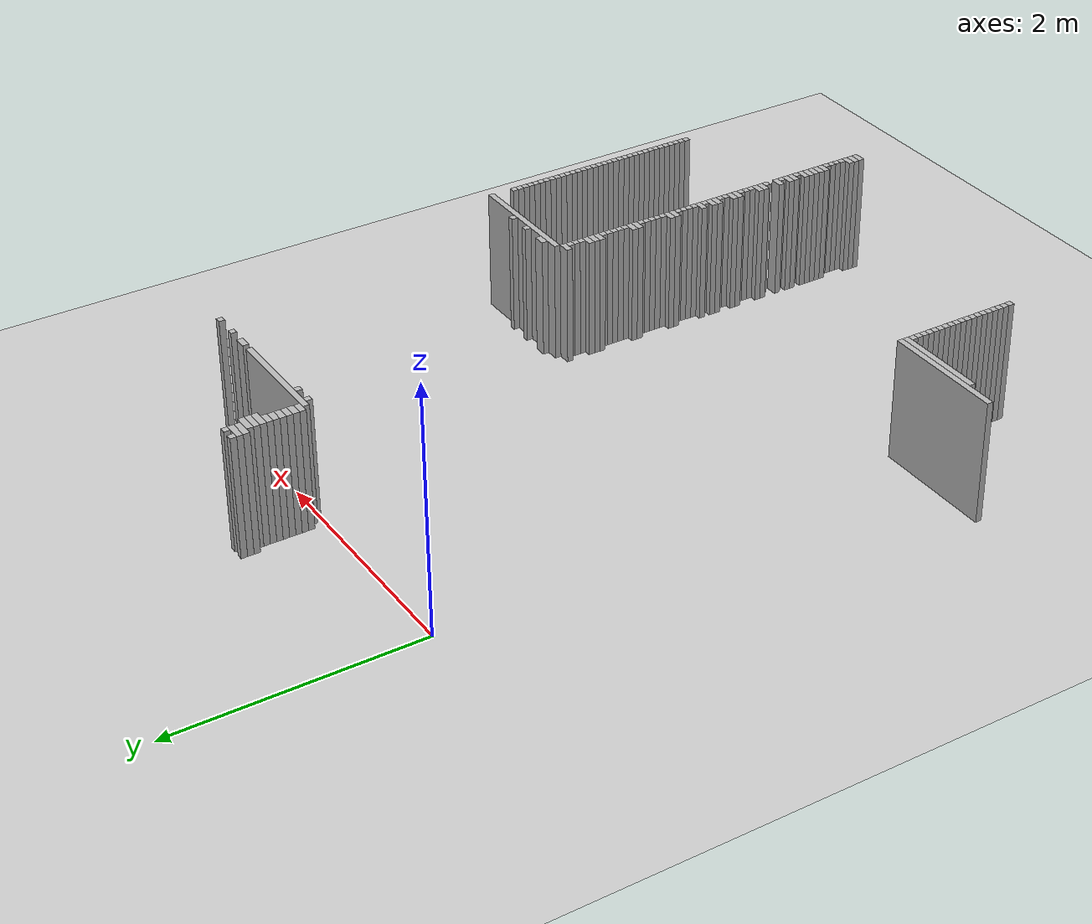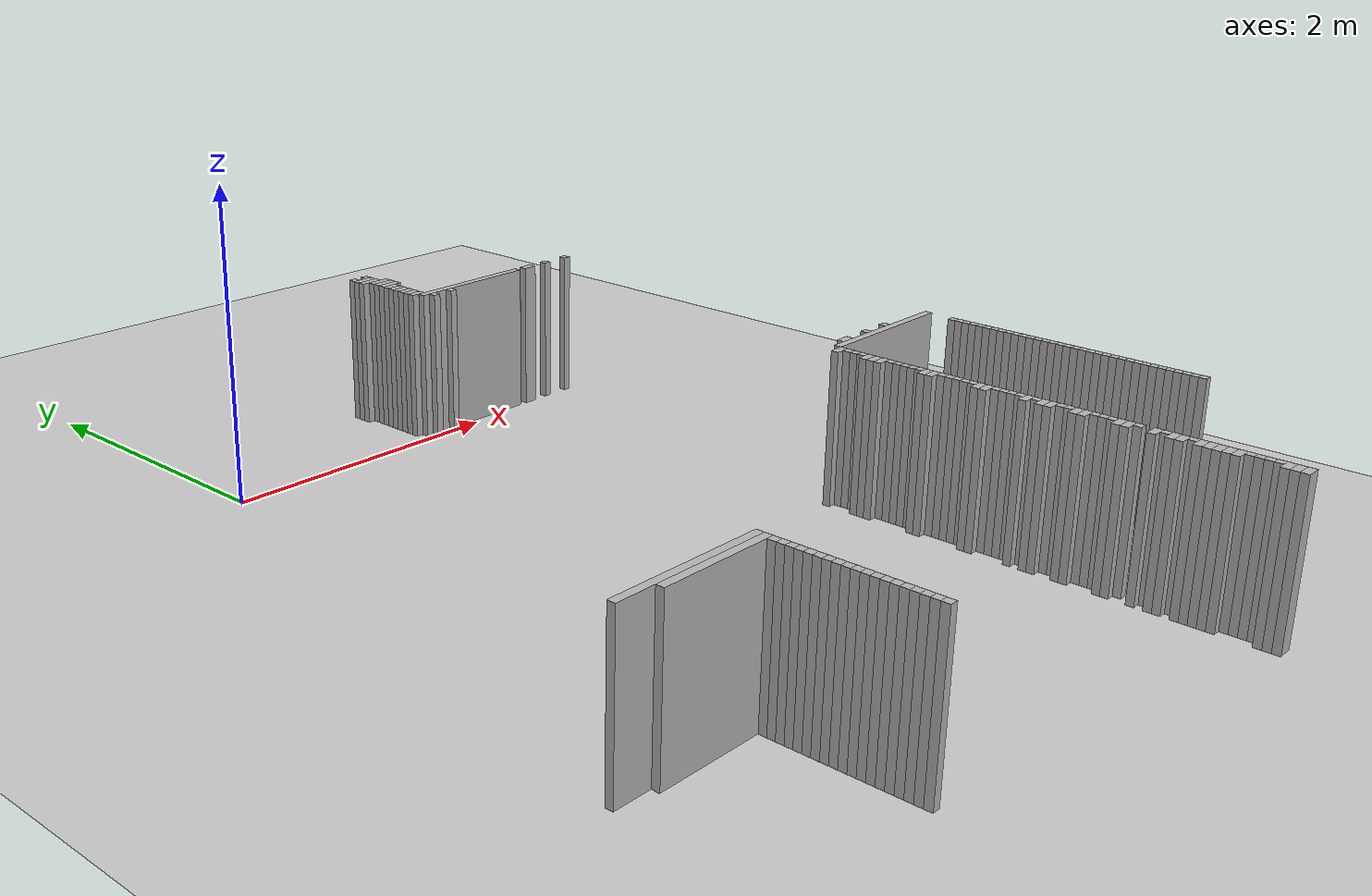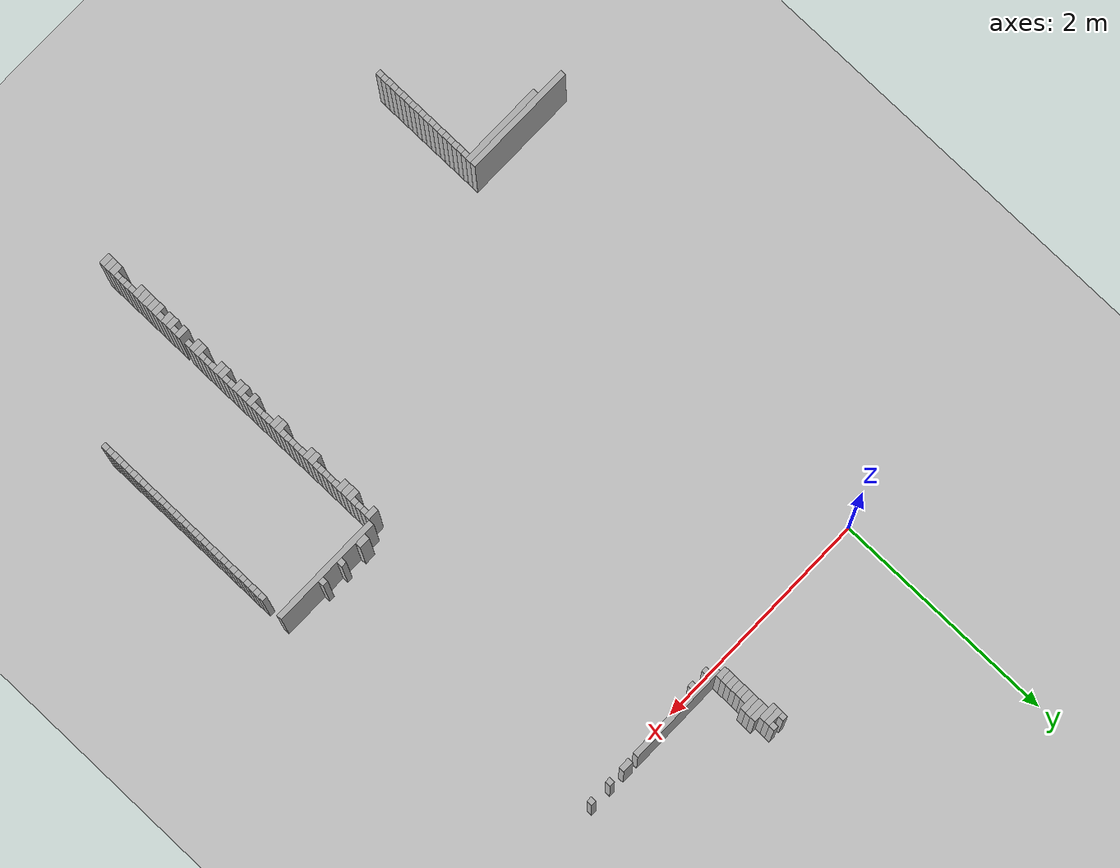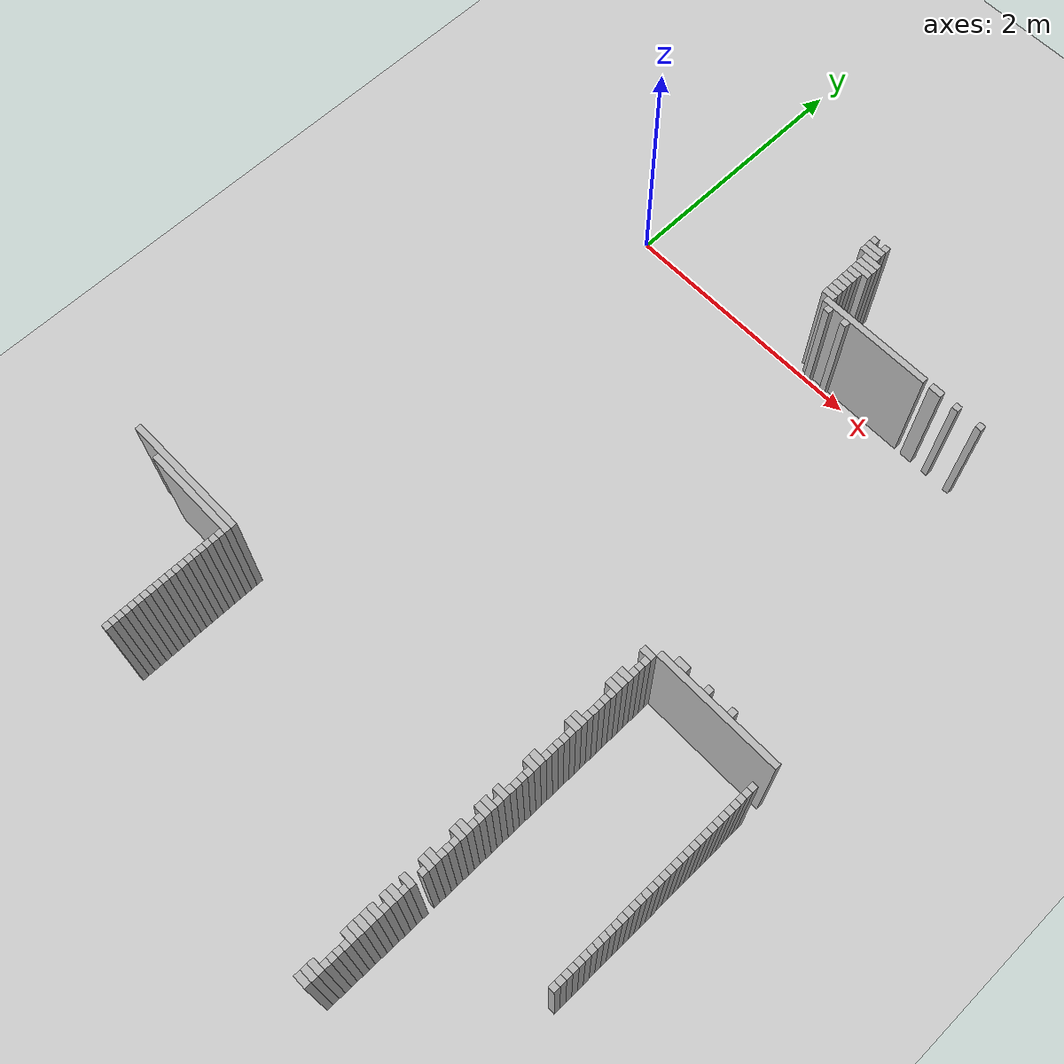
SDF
<sdf version="1.6">
 <world name="udh1_world">
  <include><uri>model://ground_plane</uri></include>
  <include><uri>model://sun</uri></include>
  <model name="wall_1366">
   <static>true</static>
   <pose>1.5050000000000008 0.6699999999999999 0.5 0 0 0</pose>
   <link name="link">
    <collision name="col"><geometry><box><size>0.05 0.05 1</size></box></geometry></collision>
    <visual name="vis"><geometry><box><size>0.05 0.05 1</size></box></geometry></visual>
   </link>
  </model>
  <model name="wall_1367">
   <static>true</static>
   <pose>1.6050000000000004 0.6699999999999999 0.5 0 0 0</pose>
   <link name="link">
    <collision name="col"><geometry><box><size>0.05 0.05 1</size></box></geometry></collision>
    <visual name="vis"><geometry><box><size>0.05 0.05 1</size></box></geometry></visual>
   </link>
  </model>
  <model name="wall_1374">
   <static>true</static>
   <pose>1.5550000000000015 0.6199999999999992 0.5 0 0 0</pose>
   <link name="link">
    <collision name="col"><geometry><box><size>0.15000000000000002 0.05 1</size></box></geometry></collision>
    <visual name="vis"><geometry><box><size>0.15000000000000002 0.05 1</size></box></geometry></visual>
   </link>
  </model>
  <model name="wall_1381">
   <static>true</static>
   <pose>1.5550000000000015 0.5700000000000003 0.5 0 0 0</pose>
   <link name="link">
    <collision name="col"><geometry><box><size>0.15000000000000002 0.05 1</size></box></geometry></collision>
    <visual name="vis"><geometry><box><size>0.15000000000000002 0.05 1</size></box></geometry></visual>
   </link>
  </model>
  <model name="wall_1387">
   <static>true</static>
   <pose>1.6050000000000004 0.5199999999999996 0.5 0 0 0</pose>
   <link name="link">
    <collision name="col"><geometry><box><size>0.15000000000000002 0.05 1</size></box></geometry></collision>
    <visual name="vis"><geometry><box><size>0.15000000000000002 0.05 1</size></box></geometry></visual>
   </link>
  </model>
  <model name="wall_1394">
   <static>true</static>
   <pose>1.6050000000000004 0.47000000000000064 0.5 0 0 0</pose>
   <link name="link">
    <collision name="col"><geometry><box><size>0.15000000000000002 0.05 1</size></box></geometry></collision>
    <visual name="vis"><geometry><box><size>0.15000000000000002 0.05 1</size></box></geometry></visual>
   </link>
  </model>
  <model name="wall_1401">
   <static>true</static>
   <pose>1.6050000000000004 0.41999999999999993 0.5 0 0 0</pose>
   <link name="link">
    <collision name="col"><geometry><box><size>0.15000000000000002 0.05 1</size></box></geometry></collision>
    <visual name="vis"><geometry><box><size>0.15000000000000002 0.05 1</size></box></geometry></visual>
   </link>
  </model>
  <model name="wall_1408">
   <static>true</static>
   <pose>1.5800000000000018 0.3699999999999992 0.5 0 0 0</pose>
   <link name="link">
    <collision name="col"><geometry><box><size>0.1 0.05 1</size></box></geometry></collision>
    <visual name="vis"><geometry><box><size>0.1 0.05 1</size></box></geometry></visual>
   </link>
  </model>
  <model name="wall_1415">
   <static>true</static>
   <pose>1.5800000000000018 0.3200000000000003 0.5 0 0 0</pose>
   <link name="link">
    <collision name="col"><geometry><box><size>0.1 0.05 1</size></box></geometry></collision>
    <visual name="vis"><geometry><box><size>0.1 0.05 1</size></box></geometry></visual>
   </link>
  </model>
  <model name="wall_1422">
   <static>true</static>
   <pose>1.5800000000000018 0.2699999999999996 0.5 0 0 0</pose>
   <link name="link">
    <collision name="col"><geometry><box><size>0.1 0.05 1</size></box></geometry></collision>
    <visual name="vis"><geometry><box><size>0.1 0.05 1</size></box></geometry></visual>
   </link>
  </model>
  <model name="wall_1429">
   <static>true</static>
   <pose>1.5800000000000018 0.21999999999999886 0.5 0 0 0</pose>
   <link name="link">
    <collision name="col"><geometry><box><size>0.1 0.05 1</size></box></geometry></collision>
    <visual name="vis"><geometry><box><size>0.1 0.05 1</size></box></geometry></visual>
   </link>
  </model>
  <model name="wall_1436">
   <static>true</static>
   <pose>1.5800000000000018 0.16999999999999993 0.5 0 0 0</pose>
   <link name="link">
    <collision name="col"><geometry><box><size>0.1 0.05 1</size></box></geometry></collision>
    <visual name="vis"><geometry><box><size>0.1 0.05 1</size></box></geometry></visual>
   </link>
  </model>
  <model name="wall_1443">
   <static>true</static>
   <pose>1.5800000000000018 0.11999999999999922 0.5 0 0 0</pose>
   <link name="link">
    <collision name="col"><geometry><box><size>0.1 0.05 1</size></box></geometry></collision>
    <visual name="vis"><geometry><box><size>0.1 0.05 1</size></box></geometry></visual>
   </link>
  </model>
  <model name="wall_1449">
   <static>true</static>
   <pose>2.030000000000001 0.07000000000000028 0.5 0 0 0</pose>
   <link name="link">
    <collision name="col"><geometry><box><size>0.9 0.05 1</size></box></geometry></collision>
    <visual name="vis"><geometry><box><size>0.9 0.05 1</size></box></geometry></visual>
   </link>
  </model>
  <model name="wall_1450">
   <static>true</static>
   <pose>2.580000000000002 0.07000000000000028 0.5 0 0 0</pose>
   <link name="link">
    <collision name="col"><geometry><box><size>0.1 0.05 1</size></box></geometry></collision>
    <visual name="vis"><geometry><box><size>0.1 0.05 1</size></box></geometry></visual>
   </link>
  </model>
  <model name="wall_1451">
   <static>true</static>
   <pose>2.755000000000001 0.07000000000000028 0.5 0 0 0</pose>
   <link name="link">
    <collision name="col"><geometry><box><size>0.05 0.05 1</size></box></geometry></collision>
    <visual name="vis"><geometry><box><size>0.05 0.05 1</size></box></geometry></visual>
   </link>
  </model>
  <model name="wall_1452">
   <static>true</static>
   <pose>2.955000000000002 0.07000000000000028 0.5 0 0 0</pose>
   <link name="link">
    <collision name="col"><geometry><box><size>0.05 0.05 1</size></box></geometry></collision>
    <visual name="vis"><geometry><box><size>0.05 0.05 1</size></box></geometry></visual>
   </link>
  </model>
  <model name="wall_1459">
   <static>true</static>
   <pose>1.6550000000000011 0.019999999999999574 0.5 0 0 0</pose>
   <link name="link">
    <collision name="col"><geometry><box><size>0.05 0.05 1</size></box></geometry></collision>
    <visual name="vis"><geometry><box><size>0.05 0.05 1</size></box></geometry></visual>
   </link>
  </model>
  <model name="wall_1460">
   <static>true</static>
   <pose>1.8050000000000015 0.019999999999999574 0.5 0 0 0</pose>
   <link name="link">
    <collision name="col"><geometry><box><size>0.05 0.05 1</size></box></geometry></collision>
    <visual name="vis"><geometry><box><size>0.05 0.05 1</size></box></geometry></visual>
   </link>
  </model>
  <model name="wall_1717">
   <static>true</static>
   <pose>2.7300000000000004 -2.5300000000000002 0.5 0 0 0</pose>
   <link name="link">
    <collision name="col"><geometry><box><size>0.1 0.05 1</size></box></geometry></collision>
    <visual name="vis"><geometry><box><size>0.1 0.05 1</size></box></geometry></visual>
   </link>
  </model>
  <model name="wall_1718">
   <static>true</static>
   <pose>2.955000000000002 -2.5300000000000002 0.5 0 0 0</pose>
   <link name="link">
    <collision name="col"><geometry><box><size>0.05 0.05 1</size></box></geometry></collision>
    <visual name="vis"><geometry><box><size>0.05 0.05 1</size></box></geometry></visual>
   </link>
  </model>
  <model name="wall_1719">
   <static>true</static>
   <pose>3.155000000000001 -2.5300000000000002 0.5 0 0 0</pose>
   <link name="link">
    <collision name="col"><geometry><box><size>0.05 0.05 1</size></box></geometry></collision>
    <visual name="vis"><geometry><box><size>0.05 0.05 1</size></box></geometry></visual>
   </link>
  </model>
  <model name="wall_1724">
   <static>true</static>
   <pose>3.080000000000002 -2.58 0.5 0 0 0</pose>
   <link name="link">
    <collision name="col"><geometry><box><size>1.0 0.05 1</size></box></geometry></collision>
    <visual name="vis"><geometry><box><size>1.0 0.05 1</size></box></geometry></visual>
   </link>
  </model>
  <model name="wall_1729">
   <static>true</static>
   <pose>2.530000000000001 -2.630000000000001 0.5 0 0 0</pose>
   <link name="link">
    <collision name="col"><geometry><box><size>0.1 0.05 1</size></box></geometry></collision>
    <visual name="vis"><geometry><box><size>0.1 0.05 1</size></box></geometry></visual>
   </link>
  </model>
  <model name="wall_1735">
   <static>true</static>
   <pose>2.5550000000000015 -2.6800000000000006 0.5 0 0 0</pose>
   <link name="link">
    <collision name="col"><geometry><box><size>0.05 0.05 1</size></box></geometry></collision>
    <visual name="vis"><geometry><box><size>0.05 0.05 1</size></box></geometry></visual>
   </link>
  </model>
  <model name="wall_1741">
   <static>true</static>
   <pose>2.5550000000000015 -2.7300000000000004 0.5 0 0 0</pose>
   <link name="link">
    <collision name="col"><geometry><box><size>0.05 0.05 1</size></box></geometry></collision>
    <visual name="vis"><geometry><box><size>0.05 0.05 1</size></box></geometry></visual>
   </link>
  </model>
  <model name="wall_1747">
   <static>true</static>
   <pose>2.5550000000000015 -2.7800000000000002 0.5 0 0 0</pose>
   <link name="link">
    <collision name="col"><geometry><box><size>0.05 0.05 1</size></box></geometry></collision>
    <visual name="vis"><geometry><box><size>0.05 0.05 1</size></box></geometry></visual>
   </link>
  </model>
  <model name="wall_1748">
   <static>true</static>
   <pose>3.5550000000000015 -2.7800000000000002 0.5 0 0 0</pose>
   <link name="link">
    <collision name="col"><geometry><box><size>0.05 0.05 1</size></box></geometry></collision>
    <visual name="vis"><geometry><box><size>0.05 0.05 1</size></box></geometry></visual>
   </link>
  </model>
  <model name="wall_1753">
   <static>true</static>
   <pose>2.530000000000001 -2.83 0.5 0 0 0</pose>
   <link name="link">
    <collision name="col"><geometry><box><size>0.1 0.05 1</size></box></geometry></collision>
    <visual name="vis"><geometry><box><size>0.1 0.05 1</size></box></geometry></visual>
   </link>
  </model>
  <model name="wall_1754">
   <static>true</static>
   <pose>3.5550000000000015 -2.83 0.5 0 0 0</pose>
   <link name="link">
    <collision name="col"><geometry><box><size>0.05 0.05 1</size></box></geometry></collision>
    <visual name="vis"><geometry><box><size>0.05 0.05 1</size></box></geometry></visual>
   </link>
  </model>
  <model name="wall_1759">
   <static>true</static>
   <pose>2.530000000000001 -2.880000000000001 0.5 0 0 0</pose>
   <link name="link">
    <collision name="col"><geometry><box><size>0.1 0.05 1</size></box></geometry></collision>
    <visual name="vis"><geometry><box><size>0.1 0.05 1</size></box></geometry></visual>
   </link>
  </model>
  <model name="wall_1760">
   <static>true</static>
   <pose>3.5550000000000015 -2.880000000000001 0.5 0 0 0</pose>
   <link name="link">
    <collision name="col"><geometry><box><size>0.05 0.05 1</size></box></geometry></collision>
    <visual name="vis"><geometry><box><size>0.05 0.05 1</size></box></geometry></visual>
   </link>
  </model>
  <model name="wall_1765">
   <static>true</static>
   <pose>2.530000000000001 -2.9300000000000006 0.5 0 0 0</pose>
   <link name="link">
    <collision name="col"><geometry><box><size>0.1 0.05 1</size></box></geometry></collision>
    <visual name="vis"><geometry><box><size>0.1 0.05 1</size></box></geometry></visual>
   </link>
  </model>
  <model name="wall_1766">
   <static>true</static>
   <pose>3.5550000000000015 -2.9300000000000006 0.5 0 0 0</pose>
   <link name="link">
    <collision name="col"><geometry><box><size>0.05 0.05 1</size></box></geometry></collision>
    <visual name="vis"><geometry><box><size>0.05 0.05 1</size></box></geometry></visual>
   </link>
  </model>
  <model name="wall_1771">
   <static>true</static>
   <pose>2.5550000000000015 -2.9800000000000004 0.5 0 0 0</pose>
   <link name="link">
    <collision name="col"><geometry><box><size>0.05 0.05 1</size></box></geometry></collision>
    <visual name="vis"><geometry><box><size>0.05 0.05 1</size></box></geometry></visual>
   </link>
  </model>
  <model name="wall_1772">
   <static>true</static>
   <pose>3.5550000000000015 -2.9800000000000004 0.5 0 0 0</pose>
   <link name="link">
    <collision name="col"><geometry><box><size>0.05 0.05 1</size></box></geometry></collision>
    <visual name="vis"><geometry><box><size>0.05 0.05 1</size></box></geometry></visual>
   </link>
  </model>
  <model name="wall_1777">
   <static>true</static>
   <pose>2.5550000000000015 -3.0300000000000002 0.5 0 0 0</pose>
   <link name="link">
    <collision name="col"><geometry><box><size>0.05 0.05 1</size></box></geometry></collision>
    <visual name="vis"><geometry><box><size>0.05 0.05 1</size></box></geometry></visual>
   </link>
  </model>
  <model name="wall_1778">
   <static>true</static>
   <pose>3.5550000000000015 -3.0300000000000002 0.5 0 0 0</pose>
   <link name="link">
    <collision name="col"><geometry><box><size>0.05 0.05 1</size></box></geometry></collision>
    <visual name="vis"><geometry><box><size>0.05 0.05 1</size></box></geometry></visual>
   </link>
  </model>
  <model name="wall_1783">
   <static>true</static>
   <pose>2.5550000000000015 -3.08 0.5 0 0 0</pose>
   <link name="link">
    <collision name="col"><geometry><box><size>0.05 0.05 1</size></box></geometry></collision>
    <visual name="vis"><geometry><box><size>0.05 0.05 1</size></box></geometry></visual>
   </link>
  </model>
  <model name="wall_1784">
   <static>true</static>
   <pose>3.5550000000000015 -3.08 0.5 0 0 0</pose>
   <link name="link">
    <collision name="col"><geometry><box><size>0.05 0.05 1</size></box></geometry></collision>
    <visual name="vis"><geometry><box><size>0.05 0.05 1</size></box></geometry></visual>
   </link>
  </model>
  <model name="wall_1789">
   <static>true</static>
   <pose>2.5550000000000015 -3.130000000000001 0.5 0 0 0</pose>
   <link name="link">
    <collision name="col"><geometry><box><size>0.05 0.05 1</size></box></geometry></collision>
    <visual name="vis"><geometry><box><size>0.05 0.05 1</size></box></geometry></visual>
   </link>
  </model>
  <model name="wall_1790">
   <static>true</static>
   <pose>3.5550000000000015 -3.130000000000001 0.5 0 0 0</pose>
   <link name="link">
    <collision name="col"><geometry><box><size>0.05 0.05 1</size></box></geometry></collision>
    <visual name="vis"><geometry><box><size>0.05 0.05 1</size></box></geometry></visual>
   </link>
  </model>
  <model name="wall_1795">
   <static>true</static>
   <pose>2.5550000000000015 -3.1800000000000006 0.5 0 0 0</pose>
   <link name="link">
    <collision name="col"><geometry><box><size>0.05 0.05 1</size></box></geometry></collision>
    <visual name="vis"><geometry><box><size>0.05 0.05 1</size></box></geometry></visual>
   </link>
  </model>
  <model name="wall_1796">
   <static>true</static>
   <pose>3.5550000000000015 -3.1800000000000006 0.5 0 0 0</pose>
   <link name="link">
    <collision name="col"><geometry><box><size>0.05 0.05 1</size></box></geometry></collision>
    <visual name="vis"><geometry><box><size>0.05 0.05 1</size></box></geometry></visual>
   </link>
  </model>
  <model name="wall_1801">
   <static>true</static>
   <pose>2.530000000000001 -3.2300000000000004 0.5 0 0 0</pose>
   <link name="link">
    <collision name="col"><geometry><box><size>0.1 0.05 1</size></box></geometry></collision>
    <visual name="vis"><geometry><box><size>0.1 0.05 1</size></box></geometry></visual>
   </link>
  </model>
  <model name="wall_1802">
   <static>true</static>
   <pose>3.5550000000000015 -3.2300000000000004 0.5 0 0 0</pose>
   <link name="link">
    <collision name="col"><geometry><box><size>0.05 0.05 1</size></box></geometry></collision>
    <visual name="vis"><geometry><box><size>0.05 0.05 1</size></box></geometry></visual>
   </link>
  </model>
  <model name="wall_1807">
   <static>true</static>
   <pose>2.530000000000001 -3.2800000000000002 0.5 0 0 0</pose>
   <link name="link">
    <collision name="col"><geometry><box><size>0.1 0.05 1</size></box></geometry></collision>
    <visual name="vis"><geometry><box><size>0.1 0.05 1</size></box></geometry></visual>
   </link>
  </model>
  <model name="wall_1808">
   <static>true</static>
   <pose>3.5550000000000015 -3.2800000000000002 0.5 0 0 0</pose>
   <link name="link">
    <collision name="col"><geometry><box><size>0.05 0.05 1</size></box></geometry></collision>
    <visual name="vis"><geometry><box><size>0.05 0.05 1</size></box></geometry></visual>
   </link>
  </model>
  <model name="wall_1813">
   <static>true</static>
   <pose>2.5550000000000015 -3.33 0.5 0 0 0</pose>
   <link name="link">
    <collision name="col"><geometry><box><size>0.05 0.05 1</size></box></geometry></collision>
    <visual name="vis"><geometry><box><size>0.05 0.05 1</size></box></geometry></visual>
   </link>
  </model>
  <model name="wall_1814">
   <static>true</static>
   <pose>3.5550000000000015 -3.33 0.5 0 0 0</pose>
   <link name="link">
    <collision name="col"><geometry><box><size>0.05 0.05 1</size></box></geometry></collision>
    <visual name="vis"><geometry><box><size>0.05 0.05 1</size></box></geometry></visual>
   </link>
  </model>
  <model name="wall_1819">
   <static>true</static>
   <pose>2.5550000000000015 -3.380000000000001 0.5 0 0 0</pose>
   <link name="link">
    <collision name="col"><geometry><box><size>0.05 0.05 1</size></box></geometry></collision>
    <visual name="vis"><geometry><box><size>0.05 0.05 1</size></box></geometry></visual>
   </link>
  </model>
  <model name="wall_1820">
   <static>true</static>
   <pose>3.5550000000000015 -3.380000000000001 0.5 0 0 0</pose>
   <link name="link">
    <collision name="col"><geometry><box><size>0.05 0.05 1</size></box></geometry></collision>
    <visual name="vis"><geometry><box><size>0.05 0.05 1</size></box></geometry></visual>
   </link>
  </model>
  <model name="wall_1825">
   <static>true</static>
   <pose>2.5550000000000015 -3.4300000000000006 0.5 0 0 0</pose>
   <link name="link">
    <collision name="col"><geometry><box><size>0.05 0.05 1</size></box></geometry></collision>
    <visual name="vis"><geometry><box><size>0.05 0.05 1</size></box></geometry></visual>
   </link>
  </model>
  <model name="wall_1826">
   <static>true</static>
   <pose>3.5550000000000015 -3.4300000000000006 0.5 0 0 0</pose>
   <link name="link">
    <collision name="col"><geometry><box><size>0.05 0.05 1</size></box></geometry></collision>
    <visual name="vis"><geometry><box><size>0.05 0.05 1</size></box></geometry></visual>
   </link>
  </model>
  <model name="wall_1839">
   <static>true</static>
   <pose>2.5550000000000015 -3.4800000000000004 0.5 0 0 0</pose>
   <link name="link">
    <collision name="col"><geometry><box><size>0.05 0.05 1</size></box></geometry></collision>
    <visual name="vis"><geometry><box><size>0.05 0.05 1</size></box></geometry></visual>
   </link>
  </model>
  <model name="wall_1840">
   <static>true</static>
   <pose>3.5550000000000015 -3.4800000000000004 0.5 0 0 0</pose>
   <link name="link">
    <collision name="col"><geometry><box><size>0.05 0.05 1</size></box></geometry></collision>
    <visual name="vis"><geometry><box><size>0.05 0.05 1</size></box></geometry></visual>
   </link>
  </model>
  <model name="wall_1845">
   <static>true</static>
   <pose>2.5550000000000015 -3.5300000000000002 0.5 0 0 0</pose>
   <link name="link">
    <collision name="col"><geometry><box><size>0.05 0.05 1</size></box></geometry></collision>
    <visual name="vis"><geometry><box><size>0.05 0.05 1</size></box></geometry></visual>
   </link>
  </model>
  <model name="wall_1846">
   <static>true</static>
   <pose>3.5550000000000015 -3.5300000000000002 0.5 0 0 0</pose>
   <link name="link">
    <collision name="col"><geometry><box><size>0.05 0.05 1</size></box></geometry></collision>
    <visual name="vis"><geometry><box><size>0.05 0.05 1</size></box></geometry></visual>
   </link>
  </model>
  <model name="wall_1851">
   <static>true</static>
   <pose>2.530000000000001 -3.58 0.5 0 0 0</pose>
   <link name="link">
    <collision name="col"><geometry><box><size>0.1 0.05 1</size></box></geometry></collision>
    <visual name="vis"><geometry><box><size>0.1 0.05 1</size></box></geometry></visual>
   </link>
  </model>
  <model name="wall_1852">
   <static>true</static>
   <pose>3.5550000000000015 -3.58 0.5 0 0 0</pose>
   <link name="link">
    <collision name="col"><geometry><box><size>0.05 0.05 1</size></box></geometry></collision>
    <visual name="vis"><geometry><box><size>0.05 0.05 1</size></box></geometry></visual>
   </link>
  </model>
  <model name="wall_1857">
   <static>true</static>
   <pose>2.530000000000001 -3.630000000000001 0.5 0 0 0</pose>
   <link name="link">
    <collision name="col"><geometry><box><size>0.1 0.05 1</size></box></geometry></collision>
    <visual name="vis"><geometry><box><size>0.1 0.05 1</size></box></geometry></visual>
   </link>
  </model>
  <model name="wall_1858">
   <static>true</static>
   <pose>3.5550000000000015 -3.630000000000001 0.5 0 0 0</pose>
   <link name="link">
    <collision name="col"><geometry><box><size>0.05 0.05 1</size></box></geometry></collision>
    <visual name="vis"><geometry><box><size>0.05 0.05 1</size></box></geometry></visual>
   </link>
  </model>
  <model name="wall_1863">
   <static>true</static>
   <pose>2.5550000000000015 -3.6800000000000006 0.5 0 0 0</pose>
   <link name="link">
    <collision name="col"><geometry><box><size>0.05 0.05 1</size></box></geometry></collision>
    <visual name="vis"><geometry><box><size>0.05 0.05 1</size></box></geometry></visual>
   </link>
  </model>
  <model name="wall_1864">
   <static>true</static>
   <pose>3.5550000000000015 -3.6800000000000006 0.5 0 0 0</pose>
   <link name="link">
    <collision name="col"><geometry><box><size>0.05 0.05 1</size></box></geometry></collision>
    <visual name="vis"><geometry><box><size>0.05 0.05 1</size></box></geometry></visual>
   </link>
  </model>
  <model name="wall_1869">
   <static>true</static>
   <pose>2.5550000000000015 -3.7300000000000004 0.5 0 0 0</pose>
   <link name="link">
    <collision name="col"><geometry><box><size>0.05 0.05 1</size></box></geometry></collision>
    <visual name="vis"><geometry><box><size>0.05 0.05 1</size></box></geometry></visual>
   </link>
  </model>
  <model name="wall_1870">
   <static>true</static>
   <pose>3.5550000000000015 -3.7300000000000004 0.5 0 0 0</pose>
   <link name="link">
    <collision name="col"><geometry><box><size>0.05 0.05 1</size></box></geometry></collision>
    <visual name="vis"><geometry><box><size>0.05 0.05 1</size></box></geometry></visual>
   </link>
  </model>
  <model name="wall_1875">
   <static>true</static>
   <pose>2.5550000000000015 -3.7800000000000002 0.5 0 0 0</pose>
   <link name="link">
    <collision name="col"><geometry><box><size>0.05 0.05 1</size></box></geometry></collision>
    <visual name="vis"><geometry><box><size>0.05 0.05 1</size></box></geometry></visual>
   </link>
  </model>
  <model name="wall_1876">
   <static>true</static>
   <pose>3.5550000000000015 -3.7800000000000002 0.5 0 0 0</pose>
   <link name="link">
    <collision name="col"><geometry><box><size>0.05 0.05 1</size></box></geometry></collision>
    <visual name="vis"><geometry><box><size>0.05 0.05 1</size></box></geometry></visual>
   </link>
  </model>
  <model name="wall_1881">
   <static>true</static>
   <pose>2.5550000000000015 -3.83 0.5 0 0 0</pose>
   <link name="link">
    <collision name="col"><geometry><box><size>0.05 0.05 1</size></box></geometry></collision>
    <visual name="vis"><geometry><box><size>0.05 0.05 1</size></box></geometry></visual>
   </link>
  </model>
  <model name="wall_1882">
   <static>true</static>
   <pose>3.5550000000000015 -3.83 0.5 0 0 0</pose>
   <link name="link">
    <collision name="col"><geometry><box><size>0.05 0.05 1</size></box></geometry></collision>
    <visual name="vis"><geometry><box><size>0.05 0.05 1</size></box></geometry></visual>
   </link>
  </model>
  <model name="wall_1887">
   <static>true</static>
   <pose>2.530000000000001 -3.880000000000001 0.5 0 0 0</pose>
   <link name="link">
    <collision name="col"><geometry><box><size>0.1 0.05 1</size></box></geometry></collision>
    <visual name="vis"><geometry><box><size>0.1 0.05 1</size></box></geometry></visual>
   </link>
  </model>
  <model name="wall_1888">
   <static>true</static>
   <pose>3.5550000000000015 -3.880000000000001 0.5 0 0 0</pose>
   <link name="link">
    <collision name="col"><geometry><box><size>0.05 0.05 1</size></box></geometry></collision>
    <visual name="vis"><geometry><box><size>0.05 0.05 1</size></box></geometry></visual>
   </link>
  </model>
  <model name="wall_1893">
   <static>true</static>
   <pose>-0.41999999999999993 -3.9300000000000006 0.5 0 0 0</pose>
   <link name="link">
    <collision name="col"><geometry><box><size>1.0 0.05 1</size></box></geometry></collision>
    <visual name="vis"><geometry><box><size>1.0 0.05 1</size></box></geometry></visual>
   </link>
  </model>
  <model name="wall_1894">
   <static>true</static>
   <pose>2.5550000000000015 -3.9300000000000006 0.5 0 0 0</pose>
   <link name="link">
    <collision name="col"><geometry><box><size>0.05 0.05 1</size></box></geometry></collision>
    <visual name="vis"><geometry><box><size>0.05 0.05 1</size></box></geometry></visual>
   </link>
  </model>
  <model name="wall_1895">
   <static>true</static>
   <pose>3.5550000000000015 -3.9300000000000006 0.5 0 0 0</pose>
   <link name="link">
    <collision name="col"><geometry><box><size>0.05 0.05 1</size></box></geometry></collision>
    <visual name="vis"><geometry><box><size>0.05 0.05 1</size></box></geometry></visual>
   </link>
  </model>
  <model name="wall_1902">
   <static>true</static>
   <pose>-0.29499999999999993 -3.9800000000000004 0.5 0 0 0</pose>
   <link name="link">
    <collision name="col"><geometry><box><size>0.75 0.05 1</size></box></geometry></collision>
    <visual name="vis"><geometry><box><size>0.75 0.05 1</size></box></geometry></visual>
   </link>
  </model>
  <model name="wall_1903">
   <static>true</static>
   <pose>2.530000000000001 -3.9800000000000004 0.5 0 0 0</pose>
   <link name="link">
    <collision name="col"><geometry><box><size>0.1 0.05 1</size></box></geometry></collision>
    <visual name="vis"><geometry><box><size>0.1 0.05 1</size></box></geometry></visual>
   </link>
  </model>
  <model name="wall_1904">
   <static>true</static>
   <pose>3.5550000000000015 -3.9800000000000004 0.5 0 0 0</pose>
   <link name="link">
    <collision name="col"><geometry><box><size>0.05 0.05 1</size></box></geometry></collision>
    <visual name="vis"><geometry><box><size>0.05 0.05 1</size></box></geometry></visual>
   </link>
  </model>
  <model name="wall_1910">
   <static>true</static>
   <pose>0.05500000000000149 -4.03 0.5 0 0 0</pose>
   <link name="link">
    <collision name="col"><geometry><box><size>0.05 0.05 1</size></box></geometry></collision>
    <visual name="vis"><geometry><box><size>0.05 0.05 1</size></box></geometry></visual>
   </link>
  </model>
  <model name="wall_1911">
   <static>true</static>
   <pose>2.530000000000001 -4.03 0.5 0 0 0</pose>
   <link name="link">
    <collision name="col"><geometry><box><size>0.1 0.05 1</size></box></geometry></collision>
    <visual name="vis"><geometry><box><size>0.1 0.05 1</size></box></geometry></visual>
   </link>
  </model>
  <model name="wall_1912">
   <static>true</static>
   <pose>3.5550000000000015 -4.03 0.5 0 0 0</pose>
   <link name="link">
    <collision name="col"><geometry><box><size>0.05 0.05 1</size></box></geometry></collision>
    <visual name="vis"><geometry><box><size>0.05 0.05 1</size></box></geometry></visual>
   </link>
  </model>
  <model name="wall_1918">
   <static>true</static>
   <pose>0.05500000000000149 -4.08 0.5 0 0 0</pose>
   <link name="link">
    <collision name="col"><geometry><box><size>0.05 0.05 1</size></box></geometry></collision>
    <visual name="vis"><geometry><box><size>0.05 0.05 1</size></box></geometry></visual>
   </link>
  </model>
  <model name="wall_1919">
   <static>true</static>
   <pose>2.5550000000000015 -4.08 0.5 0 0 0</pose>
   <link name="link">
    <collision name="col"><geometry><box><size>0.05 0.05 1</size></box></geometry></collision>
    <visual name="vis"><geometry><box><size>0.05 0.05 1</size></box></geometry></visual>
   </link>
  </model>
  <model name="wall_1920">
   <static>true</static>
   <pose>3.5550000000000015 -4.08 0.5 0 0 0</pose>
   <link name="link">
    <collision name="col"><geometry><box><size>0.05 0.05 1</size></box></geometry></collision>
    <visual name="vis"><geometry><box><size>0.05 0.05 1</size></box></geometry></visual>
   </link>
  </model>
  <model name="wall_1926">
   <static>true</static>
   <pose>0.05500000000000149 -4.130000000000001 0.5 0 0 0</pose>
   <link name="link">
    <collision name="col"><geometry><box><size>0.05 0.05 1</size></box></geometry></collision>
    <visual name="vis"><geometry><box><size>0.05 0.05 1</size></box></geometry></visual>
   </link>
  </model>
  <model name="wall_1927">
   <static>true</static>
   <pose>2.5550000000000015 -4.130000000000001 0.5 0 0 0</pose>
   <link name="link">
    <collision name="col"><geometry><box><size>0.05 0.05 1</size></box></geometry></collision>
    <visual name="vis"><geometry><box><size>0.05 0.05 1</size></box></geometry></visual>
   </link>
  </model>
  <model name="wall_1928">
   <static>true</static>
   <pose>3.5550000000000015 -4.130000000000001 0.5 0 0 0</pose>
   <link name="link">
    <collision name="col"><geometry><box><size>0.05 0.05 1</size></box></geometry></collision>
    <visual name="vis"><geometry><box><size>0.05 0.05 1</size></box></geometry></visual>
   </link>
  </model>
  <model name="wall_1934">
   <static>true</static>
   <pose>0.05500000000000149 -4.180000000000001 0.5 0 0 0</pose>
   <link name="link">
    <collision name="col"><geometry><box><size>0.05 0.05 1</size></box></geometry></collision>
    <visual name="vis"><geometry><box><size>0.05 0.05 1</size></box></geometry></visual>
   </link>
  </model>
  <model name="wall_1935">
   <static>true</static>
   <pose>2.530000000000001 -4.180000000000001 0.5 0 0 0</pose>
   <link name="link">
    <collision name="col"><geometry><box><size>0.1 0.05 1</size></box></geometry></collision>
    <visual name="vis"><geometry><box><size>0.1 0.05 1</size></box></geometry></visual>
   </link>
  </model>
  <model name="wall_1936">
   <static>true</static>
   <pose>3.5550000000000015 -4.180000000000001 0.5 0 0 0</pose>
   <link name="link">
    <collision name="col"><geometry><box><size>0.05 0.05 1</size></box></geometry></collision>
    <visual name="vis"><geometry><box><size>0.05 0.05 1</size></box></geometry></visual>
   </link>
  </model>
  <model name="wall_1942">
   <static>true</static>
   <pose>0.05500000000000149 -4.23 0.5 0 0 0</pose>
   <link name="link">
    <collision name="col"><geometry><box><size>0.05 0.05 1</size></box></geometry></collision>
    <visual name="vis"><geometry><box><size>0.05 0.05 1</size></box></geometry></visual>
   </link>
  </model>
  <model name="wall_1943">
   <static>true</static>
   <pose>2.530000000000001 -4.23 0.5 0 0 0</pose>
   <link name="link">
    <collision name="col"><geometry><box><size>0.1 0.05 1</size></box></geometry></collision>
    <visual name="vis"><geometry><box><size>0.1 0.05 1</size></box></geometry></visual>
   </link>
  </model>
  <model name="wall_1944">
   <static>true</static>
   <pose>3.5550000000000015 -4.23 0.5 0 0 0</pose>
   <link name="link">
    <collision name="col"><geometry><box><size>0.05 0.05 1</size></box></geometry></collision>
    <visual name="vis"><geometry><box><size>0.05 0.05 1</size></box></geometry></visual>
   </link>
  </model>
  <model name="wall_1950">
   <static>true</static>
   <pose>0.05500000000000149 -4.28 0.5 0 0 0</pose>
   <link name="link">
    <collision name="col"><geometry><box><size>0.05 0.05 1</size></box></geometry></collision>
    <visual name="vis"><geometry><box><size>0.05 0.05 1</size></box></geometry></visual>
   </link>
  </model>
  <model name="wall_1951">
   <static>true</static>
   <pose>2.5550000000000015 -4.28 0.5 0 0 0</pose>
   <link name="link">
    <collision name="col"><geometry><box><size>0.05 0.05 1</size></box></geometry></collision>
    <visual name="vis"><geometry><box><size>0.05 0.05 1</size></box></geometry></visual>
   </link>
  </model>
  <model name="wall_1952">
   <static>true</static>
   <pose>3.5550000000000015 -4.28 0.5 0 0 0</pose>
   <link name="link">
    <collision name="col"><geometry><box><size>0.05 0.05 1</size></box></geometry></collision>
    <visual name="vis"><geometry><box><size>0.05 0.05 1</size></box></geometry></visual>
   </link>
  </model>
  <model name="wall_1958">
   <static>true</static>
   <pose>0.05500000000000149 -4.33 0.5 0 0 0</pose>
   <link name="link">
    <collision name="col"><geometry><box><size>0.05 0.05 1</size></box></geometry></collision>
    <visual name="vis"><geometry><box><size>0.05 0.05 1</size></box></geometry></visual>
   </link>
  </model>
  <model name="wall_1959">
   <static>true</static>
   <pose>2.5550000000000015 -4.33 0.5 0 0 0</pose>
   <link name="link">
    <collision name="col"><geometry><box><size>0.05 0.05 1</size></box></geometry></collision>
    <visual name="vis"><geometry><box><size>0.05 0.05 1</size></box></geometry></visual>
   </link>
  </model>
  <model name="wall_1960">
   <static>true</static>
   <pose>3.5550000000000015 -4.33 0.5 0 0 0</pose>
   <link name="link">
    <collision name="col"><geometry><box><size>0.05 0.05 1</size></box></geometry></collision>
    <visual name="vis"><geometry><box><size>0.05 0.05 1</size></box></geometry></visual>
   </link>
  </model>
  <model name="wall_1966">
   <static>true</static>
   <pose>0.05500000000000149 -4.380000000000001 0.5 0 0 0</pose>
   <link name="link">
    <collision name="col"><geometry><box><size>0.05 0.05 1</size></box></geometry></collision>
    <visual name="vis"><geometry><box><size>0.05 0.05 1</size></box></geometry></visual>
   </link>
  </model>
  <model name="wall_1967">
   <static>true</static>
   <pose>2.5550000000000015 -4.380000000000001 0.5 0 0 0</pose>
   <link name="link">
    <collision name="col"><geometry><box><size>0.05 0.05 1</size></box></geometry></collision>
    <visual name="vis"><geometry><box><size>0.05 0.05 1</size></box></geometry></visual>
   </link>
  </model>
  <model name="wall_1968">
   <static>true</static>
   <pose>3.5550000000000015 -4.380000000000001 0.5 0 0 0</pose>
   <link name="link">
    <collision name="col"><geometry><box><size>0.05 0.05 1</size></box></geometry></collision>
    <visual name="vis"><geometry><box><size>0.05 0.05 1</size></box></geometry></visual>
   </link>
  </model>
  <model name="wall_1974">
   <static>true</static>
   <pose>0.05500000000000149 -4.430000000000001 0.5 0 0 0</pose>
   <link name="link">
    <collision name="col"><geometry><box><size>0.05 0.05 1</size></box></geometry></collision>
    <visual name="vis"><geometry><box><size>0.05 0.05 1</size></box></geometry></visual>
   </link>
  </model>
  <model name="wall_1975">
   <static>true</static>
   <pose>2.530000000000001 -4.430000000000001 0.5 0 0 0</pose>
   <link name="link">
    <collision name="col"><geometry><box><size>0.1 0.05 1</size></box></geometry></collision>
    <visual name="vis"><geometry><box><size>0.1 0.05 1</size></box></geometry></visual>
   </link>
  </model>
  <model name="wall_1976">
   <static>true</static>
   <pose>3.5550000000000015 -4.430000000000001 0.5 0 0 0</pose>
   <link name="link">
    <collision name="col"><geometry><box><size>0.05 0.05 1</size></box></geometry></collision>
    <visual name="vis"><geometry><box><size>0.05 0.05 1</size></box></geometry></visual>
   </link>
  </model>
  <model name="wall_1982">
   <static>true</static>
   <pose>0.05500000000000149 -4.48 0.5 0 0 0</pose>
   <link name="link">
    <collision name="col"><geometry><box><size>0.05 0.05 1</size></box></geometry></collision>
    <visual name="vis"><geometry><box><size>0.05 0.05 1</size></box></geometry></visual>
   </link>
  </model>
  <model name="wall_1983">
   <static>true</static>
   <pose>2.530000000000001 -4.48 0.5 0 0 0</pose>
   <link name="link">
    <collision name="col"><geometry><box><size>0.1 0.05 1</size></box></geometry></collision>
    <visual name="vis"><geometry><box><size>0.1 0.05 1</size></box></geometry></visual>
   </link>
  </model>
  <model name="wall_1990">
   <static>true</static>
   <pose>0.05500000000000149 -4.53 0.5 0 0 0</pose>
   <link name="link">
    <collision name="col"><geometry><box><size>0.05 0.05 1</size></box></geometry></collision>
    <visual name="vis"><geometry><box><size>0.05 0.05 1</size></box></geometry></visual>
   </link>
  </model>
  <model name="wall_1991">
   <static>true</static>
   <pose>2.5550000000000015 -4.53 0.5 0 0 0</pose>
   <link name="link">
    <collision name="col"><geometry><box><size>0.05 0.05 1</size></box></geometry></collision>
    <visual name="vis"><geometry><box><size>0.05 0.05 1</size></box></geometry></visual>
   </link>
  </model>
  <model name="wall_1998">
   <static>true</static>
   <pose>0.05500000000000149 -4.580000000000001 0.5 0 0 0</pose>
   <link name="link">
    <collision name="col"><geometry><box><size>0.05 0.05 1</size></box></geometry></collision>
    <visual name="vis"><geometry><box><size>0.05 0.05 1</size></box></geometry></visual>
   </link>
  </model>
  <model name="wall_2005">
   <static>true</static>
   <pose>0.05500000000000149 -4.630000000000001 0.5 0 0 0</pose>
   <link name="link">
    <collision name="col"><geometry><box><size>0.05 0.05 1</size></box></geometry></collision>
    <visual name="vis"><geometry><box><size>0.05 0.05 1</size></box></geometry></visual>
   </link>
  </model>
  <model name="wall_2006">
   <static>true</static>
   <pose>2.530000000000001 -4.630000000000001 0.5 0 0 0</pose>
   <link name="link">
    <collision name="col"><geometry><box><size>0.1 0.05 1</size></box></geometry></collision>
    <visual name="vis"><geometry><box><size>0.1 0.05 1</size></box></geometry></visual>
   </link>
  </model>
  <model name="wall_2013">
   <static>true</static>
   <pose>0.05500000000000149 -4.680000000000001 0.5 0 0 0</pose>
   <link name="link">
    <collision name="col"><geometry><box><size>0.05 0.05 1</size></box></geometry></collision>
    <visual name="vis"><geometry><box><size>0.05 0.05 1</size></box></geometry></visual>
   </link>
  </model>
  <model name="wall_2014">
   <static>true</static>
   <pose>2.5550000000000015 -4.680000000000001 0.5 0 0 0</pose>
   <link name="link">
    <collision name="col"><geometry><box><size>0.05 0.05 1</size></box></geometry></collision>
    <visual name="vis"><geometry><box><size>0.05 0.05 1</size></box></geometry></visual>
   </link>
  </model>
  <model name="wall_2021">
   <static>true</static>
   <pose>0.05500000000000149 -4.73 0.5 0 0 0</pose>
   <link name="link">
    <collision name="col"><geometry><box><size>0.05 0.05 1</size></box></geometry></collision>
    <visual name="vis"><geometry><box><size>0.05 0.05 1</size></box></geometry></visual>
   </link>
  </model>
  <model name="wall_2022">
   <static>true</static>
   <pose>2.530000000000001 -4.73 0.5 0 0 0</pose>
   <link name="link">
    <collision name="col"><geometry><box><size>0.1 0.05 1</size></box></geometry></collision>
    <visual name="vis"><geometry><box><size>0.1 0.05 1</size></box></geometry></visual>
   </link>
  </model>
  <model name="wall_2029">
   <static>true</static>
   <pose>0.05500000000000149 -4.78 0.5 0 0 0</pose>
   <link name="link">
    <collision name="col"><geometry><box><size>0.05 0.05 1</size></box></geometry></collision>
    <visual name="vis"><geometry><box><size>0.05 0.05 1</size></box></geometry></visual>
   </link>
  </model>
  <model name="wall_2030">
   <static>true</static>
   <pose>2.530000000000001 -4.78 0.5 0 0 0</pose>
   <link name="link">
    <collision name="col"><geometry><box><size>0.1 0.05 1</size></box></geometry></collision>
    <visual name="vis"><geometry><box><size>0.1 0.05 1</size></box></geometry></visual>
   </link>
  </model>
  <model name="wall_2037">
   <static>true</static>
   <pose>0.05500000000000149 -4.830000000000001 0.5 0 0 0</pose>
   <link name="link">
    <collision name="col"><geometry><box><size>0.05 0.05 1</size></box></geometry></collision>
    <visual name="vis"><geometry><box><size>0.05 0.05 1</size></box></geometry></visual>
   </link>
  </model>
  <model name="wall_2038">
   <static>true</static>
   <pose>2.5550000000000015 -4.830000000000001 0.5 0 0 0</pose>
   <link name="link">
    <collision name="col"><geometry><box><size>0.05 0.05 1</size></box></geometry></collision>
    <visual name="vis"><geometry><box><size>0.05 0.05 1</size></box></geometry></visual>
   </link>
  </model>
  <model name="wall_2045">
   <static>true</static>
   <pose>0.05500000000000149 -4.880000000000001 0.5 0 0 0</pose>
   <link name="link">
    <collision name="col"><geometry><box><size>0.05 0.05 1</size></box></geometry></collision>
    <visual name="vis"><geometry><box><size>0.05 0.05 1</size></box></geometry></visual>
   </link>
  </model>
  <model name="wall_2046">
   <static>true</static>
   <pose>2.530000000000001 -4.880000000000001 0.5 0 0 0</pose>
   <link name="link">
    <collision name="col"><geometry><box><size>0.1 0.05 1</size></box></geometry></collision>
    <visual name="vis"><geometry><box><size>0.1 0.05 1</size></box></geometry></visual>
   </link>
  </model>
  <model name="wall_2053">
   <static>true</static>
   <pose>0.05500000000000149 -4.930000000000001 0.5 0 0 0</pose>
   <link name="link">
    <collision name="col"><geometry><box><size>0.05 0.05 1</size></box></geometry></collision>
    <visual name="vis"><geometry><box><size>0.05 0.05 1</size></box></geometry></visual>
   </link>
  </model>
  <model name="wall_2054">
   <static>true</static>
   <pose>2.530000000000001 -4.930000000000001 0.5 0 0 0</pose>
   <link name="link">
    <collision name="col"><geometry><box><size>0.1 0.05 1</size></box></geometry></collision>
    <visual name="vis"><geometry><box><size>0.1 0.05 1</size></box></geometry></visual>
   </link>
  </model>
  <model name="wall_2061">
   <static>true</static>
   <pose>2.530000000000001 -4.98 0.5 0 0 0</pose>
   <link name="link">
    <collision name="col"><geometry><box><size>0.1 0.05 1</size></box></geometry></collision>
    <visual name="vis"><geometry><box><size>0.1 0.05 1</size></box></geometry></visual>
   </link>
  </model>
  <model name="wall_2067">
   <static>true</static>
   <pose>2.530000000000001 -5.03 0.5 0 0 0</pose>
   <link name="link">
    <collision name="col"><geometry><box><size>0.1 0.05 1</size></box></geometry></collision>
    <visual name="vis"><geometry><box><size>0.1 0.05 1</size></box></geometry></visual>
   </link>
  </model>
  <model name="wall_2073">
   <static>true</static>
   <pose>2.530000000000001 -5.080000000000001 0.5 0 0 0</pose>
   <link name="link">
    <collision name="col"><geometry><box><size>0.1 0.05 1</size></box></geometry></collision>
    <visual name="vis"><geometry><box><size>0.1 0.05 1</size></box></geometry></visual>
   </link>
  </model>
  <model name="wall_2079">
   <static>true</static>
   <pose>2.5550000000000015 -5.130000000000001 0.5 0 0 0</pose>
   <link name="link">
    <collision name="col"><geometry><box><size>0.05 0.05 1</size></box></geometry></collision>
    <visual name="vis"><geometry><box><size>0.05 0.05 1</size></box></geometry></visual>
   </link>
  </model>
  <model name="wall_2085">
   <static>true</static>
   <pose>2.5550000000000015 -5.180000000000001 0.5 0 0 0</pose>
   <link name="link">
    <collision name="col"><geometry><box><size>0.05 0.05 1</size></box></geometry></collision>
    <visual name="vis"><geometry><box><size>0.05 0.05 1</size></box></geometry></visual>
   </link>
  </model>
  <model name="wall_2091">
   <static>true</static>
   <pose>2.5550000000000015 -5.23 0.5 0 0 0</pose>
   <link name="link">
    <collision name="col"><geometry><box><size>0.05 0.05 1</size></box></geometry></collision>
    <visual name="vis"><geometry><box><size>0.05 0.05 1</size></box></geometry></visual>
   </link>
  </model>
  <model name="wall_2097">
   <static>true</static>
   <pose>2.5550000000000015 -5.280000000000001 0.5 0 0 0</pose>
   <link name="link">
    <collision name="col"><geometry><box><size>0.05 0.05 1</size></box></geometry></collision>
    <visual name="vis"><geometry><box><size>0.05 0.05 1</size></box></geometry></visual>
   </link>
  </model>
  <model name="wall_2109">
   <static>true</static>
   <pose>2.530000000000001 -5.33 0.5 0 0 0</pose>
   <link name="link">
    <collision name="col"><geometry><box><size>0.1 0.05 1</size></box></geometry></collision>
    <visual name="vis"><geometry><box><size>0.1 0.05 1</size></box></geometry></visual>
   </link>
  </model>
  <model name="wall_2116">
   <static>true</static>
   <pose>2.530000000000001 -5.380000000000001 0.5 0 0 0</pose>
   <link name="link">
    <collision name="col"><geometry><box><size>0.1 0.05 1</size></box></geometry></collision>
    <visual name="vis"><geometry><box><size>0.1 0.05 1</size></box></geometry></visual>
   </link>
  </model>
  <model name="wall_2124">
   <static>true</static>
   <pose>2.530000000000001 -5.430000000000001 0.5 0 0 0</pose>
   <link name="link">
    <collision name="col"><geometry><box><size>0.1 0.05 1</size></box></geometry></collision>
    <visual name="vis"><geometry><box><size>0.1 0.05 1</size></box></geometry></visual>
   </link>
  </model>
 </world>
</sdf>
